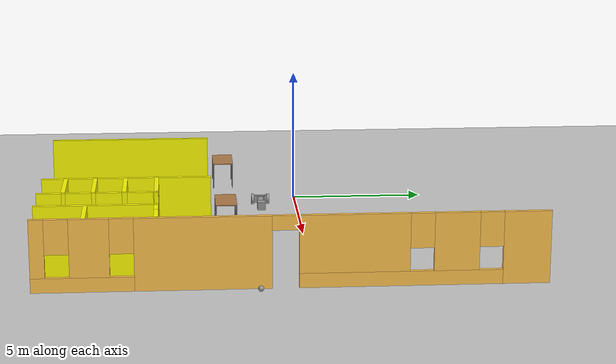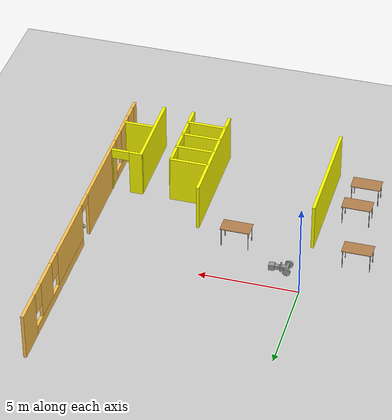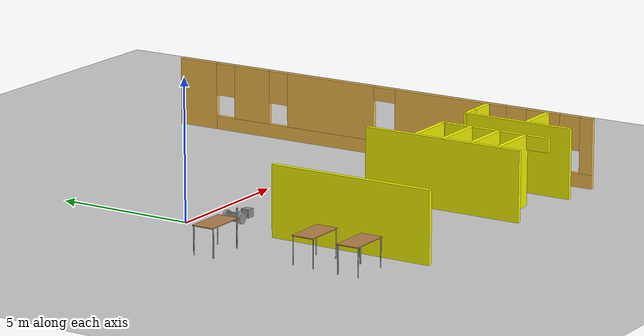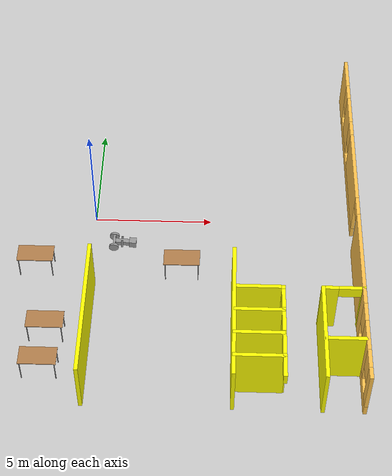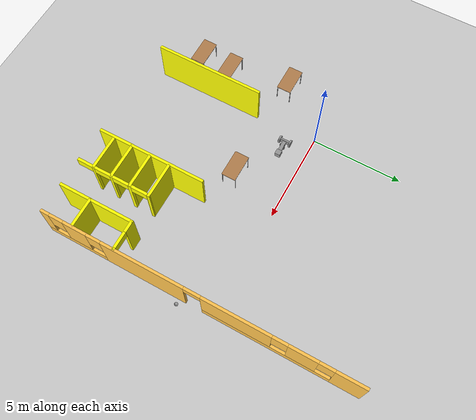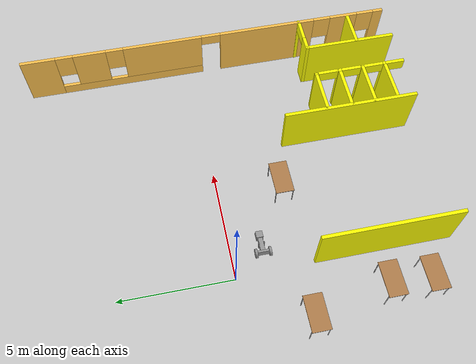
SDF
<sdf version="1.6">
 <world name="default">
  <model name="ground_plane">
   <static>1</static>
   <link name="link">
    <collision name="collision">
     <geometry><plane><normal>0 0 1</normal><size>100 100</size></plane></geometry>
     <surface><friction><ode><mu>100</mu><mu2>50</mu2></ode></friction></surface>
    </collision>
    <visual name="visual">
     <cast_shadows>0</cast_shadows>
     <geometry><plane><normal>0 0 1</normal><size>100 100</size></plane></geometry>
     <material>
      <script><uri>file://media/materials/scripts/gazebo.material</uri><name>Gazebo/Grey</name></script>
     </material>
    </visual>
   </link>
  </model>
  <model name="mybuilding">
   <pose>-2.36213 -0.825276 0 0 -0 0</pose>
   <link name="Wall_154">
    <collision name="Wall_154_Collision">
     <geometry><box><size>6 0.15 2.5</size></box></geometry>
     <pose>0 0 1.25 0 -0 0</pose>
    </collision>
    <visual name="Wall_154_Visual">
     <pose>0 0 1.25 0 -0 0</pose>
     <geometry><box><size>6 0.15 2.5</size></box></geometry>
     <material>
      <script><uri>file://media/materials/scripts/gazebo.material</uri><name>Gazebo/Grey</name></script>
      <ambient>1 1 0 1</ambient>
     </material>
     <meta><layer>0</layer></meta>
    </visual>
    <pose>2.51252 -5.57355 0 0 0 -1.5708</pose>
   </link>
   <link name="Wall_158">
    <collision name="Wall_158_Collision">
     <geometry><box><size>6 0.15 2.5</size></box></geometry>
     <pose>0 0 1.25 0 -0 0</pose>
    </collision>
    <visual name="Wall_158_Visual">
     <pose>0 0 1.25 0 -0 0</pose>
     <geometry><box><size>6 0.15 2.5</size></box></geometry>
     <material>
      <script><uri>file://media/materials/scripts/gazebo.material</uri><name>Gazebo/Grey</name></script>
      <ambient>1 1 0 1</ambient>
     </material>
     <meta><layer>0</layer></meta>
    </visual>
    <pose>8.34754 -5.57355 0 0 0 -1.5708</pose>
   </link>
   <link name="Wall_162">
    <collision name="Wall_162_Collision">
     <geometry><box><size>2 0.15 2.5</size></box></geometry>
     <pose>0 0 1.25 0 -0 0</pose>
    </collision>
    <visual name="Wall_162_Visual">
     <pose>0 0 1.25 0 -0 0</pose>
     <geometry><box><size>2 0.15 2.5</size></box></geometry>
     <material>
      <script><uri>file://media/materials/scripts/gazebo.material</uri><name>Gazebo/Grey</name></script>
      <ambient>1 1 0 1</ambient>
     </material>
     <meta><layer>0</layer></meta>
    </visual>
    <pose>9.34295 -4.49272 0 0 0 -8.3e-05</pose>
   </link>
   <link name="Wall_163">
    <pose>10.2678 -6.5178 0 0 0 -1.5708</pose>
    <visual name="Wall_163_Visual_0">
     <pose>-2.0133 0 1.25 0 -0 0</pose>
     <geometry><box><size>0.173407 0.15 2.5</size></box></geometry>
     <material>
      <script><uri>file://media/materials/scripts/gazebo.material</uri><name>Gazebo/Grey</name></script>
      <ambient>1 1 0 1</ambient>
     </material>
     <meta><layer>0</layer></meta>
    </visual>
    <collision name="Wall_163_Collision_0">
     <geometry><box><size>0.173407 0.15 2.5</size></box></geometry>
     <pose>-2.0133 0 1.25 0 -0 0</pose>
    </collision>
    <visual name="Wall_163_Visual_1">
     <pose>-0.937243 0 1.25 0 -0 0</pose>
     <geometry><box><size>0.1787 0.15 2.5</size></box></geometry>
     <material>
      <script><uri>file://media/materials/scripts/gazebo.material</uri><name>Gazebo/Grey</name></script>
      <ambient>1 1 0 1</ambient>
     </material>
     <meta><layer>0</layer></meta>
    </visual>
    <collision name="Wall_163_Collision_1">
     <geometry><box><size>0.1787 0.15 2.5</size></box></geometry>
     <pose>-0.937243 0 1.25 0 -0 0</pose>
    </collision>
    <visual name="Wall_163_Visual_2">
     <pose>0.125594 0 1.25 0 -0 0</pose>
     <geometry><box><size>0.146974 0.15 2.5</size></box></geometry>
     <material>
      <script><uri>file://media/materials/scripts/gazebo.material</uri><name>Gazebo/Grey</name></script>
      <ambient>1 1 0 1</ambient>
     </material>
     <meta><layer>0</layer></meta>
    </visual>
    <collision name="Wall_163_Collision_2">
     <geometry><box><size>0.146974 0.15 2.5</size></box></geometry>
     <pose>0.125594 0 1.25 0 -0 0</pose>
    </collision>
    <visual name="Wall_163_Visual_3">
     <pose>1.16567 0 1.25 0 -0 0</pose>
     <geometry><box><size>0.133179 0.15 2.5</size></box></geometry>
     <material>
      <script><uri>file://media/materials/scripts/gazebo.material</uri><name>Gazebo/Grey</name></script>
      <ambient>1 1 0 1</ambient>
     </material>
     <meta><layer>0</layer></meta>
    </visual>
    <collision name="Wall_163_Collision_3">
     <geometry><box><size>0.133179 0.15 2.5</size></box></geometry>
     <pose>1.16567 0 1.25 0 -0 0</pose>
    </collision>
    <visual name="Wall_163_Visual_4">
     <pose>-1.47659 0 2.25 0 -0 0</pose>
     <geometry><box><size>0.9 0.15 0.5</size></box></geometry>
     <material>
      <script><uri>file://media/materials/scripts/gazebo.material</uri><name>Gazebo/Grey</name></script>
      <ambient>1 1 0 1</ambient>
     </material>
     <meta><layer>0</layer></meta>
    </visual>
    <collision name="Wall_163_Collision_4">
     <geometry><box><size>0.9 0.15 0.5</size></box></geometry>
     <pose>-1.47659 0 2.25 0 -0 0</pose>
    </collision>
    <visual name="Wall_163_Visual_5">
     <pose>-0.397893 0 2.25 0 -0 0</pose>
     <geometry><box><size>0.9 0.15 0.5</size></box></geometry>
     <material>
      <script><uri>file://media/materials/scripts/gazebo.material</uri><name>Gazebo/Grey</name></script>
      <ambient>1 1 0 1</ambient>
     </material>
     <meta><layer>0</layer></meta>
    </visual>
    <collision name="Wall_163_Collision_5">
     <geometry><box><size>0.9 0.15 0.5</size></box></geometry>
     <pose>-0.397893 0 2.25 0 -0 0</pose>
    </collision>
    <visual name="Wall_163_Visual_6">
     <pose>0.649081 0 2.25 0 -0 0</pose>
     <geometry><box><size>0.9 0.15 0.5</size></box></geometry>
     <material>
      <script><uri>file://media/materials/scripts/gazebo.material</uri><name>Gazebo/Grey</name></script>
      <ambient>1 1 0 1</ambient>
     </material>
     <meta><layer>0</layer></meta>
    </visual>
    <collision name="Wall_163_Collision_6">
     <geometry><box><size>0.9 0.15 0.5</size></box></geometry>
     <pose>0.649081 0 2.25 0 -0 0</pose>
    </collision>
    <visual name="Wall_163_Visual_7">
     <pose>1.66613 0 2.25 0 -0 0</pose>
     <geometry><box><size>0.867739 0.15 0.5</size></box></geometry>
     <material>
      <script><uri>file://media/materials/scripts/gazebo.material</uri><name>Gazebo/Grey</name></script>
      <ambient>1 1 0 1</ambient>
     </material>
     <meta><layer>0</layer></meta>
    </visual>
    <collision name="Wall_163_Collision_7">
     <geometry><box><size>0.867739 0.15 0.5</size></box></geometry>
     <pose>1.66613 0 2.25 0 -0 0</pose>
    </collision>
   </link>
   <link name="Wall_171">
    <pose>12.6222 -4.4809 0 0 -0 3.14159</pose>
    <visual name="Wall_171_Visual_0">
     <pose>-0.79093 0 1.25 0 -0 0</pose>
     <geometry><box><size>0.168139 0.15 2.5</size></box></geometry>
     <material>
      <script><uri>file://media/materials/scripts/gazebo.material</uri><name>Gazebo/Grey</name></script>
      <ambient>1 1 0 1</ambient>
     </material>
     <meta><layer>0</layer></meta>
    </visual>
    <collision name="Wall_171_Collision_0">
     <geometry><box><size>0.168139 0.15 2.5</size></box></geometry>
     <pose>-0.79093 0 1.25 0 -0 0</pose>
    </collision>
    <visual name="Wall_171_Visual_1">
     <pose>0.53407 0 1.25 0 -0 0</pose>
     <geometry><box><size>0.681861 0.15 2.5</size></box></geometry>
     <material>
      <script><uri>file://media/materials/scripts/gazebo.material</uri><name>Gazebo/Grey</name></script>
      <ambient>1 1 0 1</ambient>
     </material>
     <meta><layer>0</layer></meta>
    </visual>
    <collision name="Wall_171_Collision_1">
     <geometry><box><size>0.681861 0.15 2.5</size></box></geometry>
     <pose>0.53407 0 1.25 0 -0 0</pose>
    </collision>
    <visual name="Wall_171_Visual_2">
     <pose>-0.256861 0 2.25 0 -0 0</pose>
     <geometry><box><size>0.9 0.15 0.5</size></box></geometry>
     <material>
      <script><uri>file://media/materials/scripts/gazebo.material</uri><name>Gazebo/Grey</name></script>
      <ambient>1 1 0 1</ambient>
     </material>
     <meta><layer>0</layer></meta>
    </visual>
    <collision name="Wall_171_Collision_2">
     <geometry><box><size>0.9 0.15 0.5</size></box></geometry>
     <pose>-0.256861 0 2.25 0 -0 0</pose>
    </collision>
   </link>
   <link name="Wall_172">
    <collision name="Wall_172_Collision">
     <geometry><box><size>4.2 0.15 2.5</size></box></geometry>
     <pose>0 0 1.25 0 -0 0</pose>
    </collision>
    <visual name="Wall_172_Visual">
     <pose>0 0 1.25 0 -0 0</pose>
     <geometry><box><size>4.2 0.15 2.5</size></box></geometry>
     <material>
      <script><uri>file://media/materials/scripts/gazebo.material</uri><name>Gazebo/Grey</name></script>
      <ambient>1 1 0 1</ambient>
     </material>
     <meta><layer>0</layer></meta>
    </visual>
    <pose>11.8222 -6.5059 0 0 0 -1.5708</pose>
   </link>
   <link name="Wall_174">
    <collision name="Wall_174_Collision">
     <geometry><box><size>1.65 0.15 2.5</size></box></geometry>
     <pose>0 0 1.25 0 -0 0</pose>
    </collision>
    <visual name="Wall_174_Visual">
     <pose>0 0 1.25 0 -0 0</pose>
     <geometry><box><size>1.65 0.15 2.5</size></box></geometry>
     <material>
      <script><uri>file://media/materials/scripts/gazebo.material</uri><name>Gazebo/Grey</name></script>
      <ambient>1 1 0 1</ambient>
     </material>
     <meta><layer>0</layer></meta>
    </visual>
    <pose>12.6046 -6.85286 0 0 -0 0</pose>
   </link>
   <link name="Wall_176">
    <collision name="Wall_176_Collision">
     <geometry><box><size>2 0.15 2.5</size></box></geometry>
     <pose>0 0 1.25 0 -0 0</pose>
    </collision>
    <visual name="Wall_176_Visual">
     <pose>0 0 1.25 0 -0 0</pose>
     <geometry><box><size>2 0.15 2.5</size></box></geometry>
     <material>
      <script><uri>file://media/materials/scripts/gazebo.material</uri><name>Gazebo/Grey</name></script>
      <ambient>1 1 0 1</ambient>
     </material>
     <meta><layer>0</layer></meta>
    </visual>
    <pose>9.29387 -6.66723 0 0 -0 0</pose>
   </link>
   <link name="Wall_179">
    <collision name="Wall_179_Collision">
     <geometry><box><size>2 0.15 2.5</size></box></geometry>
     <pose>0 0 1.25 0 -0 0</pose>
    </collision>
    <visual name="Wall_179_Visual">
     <pose>0 0 1.25 0 -0 0</pose>
     <geometry><box><size>2 0.15 2.5</size></box></geometry>
     <material>
      <script><uri>file://media/materials/scripts/gazebo.material</uri><name>Gazebo/Grey</name></script>
      <ambient>1 1 0 1</ambient>
     </material>
     <meta><layer>0</layer></meta>
    </visual>
    <pose>9.31988 -5.59469 0 0 -0 0</pose>
   </link>
   <link name="Wall_182">
    <collision name="Wall_182_Collision">
     <geometry><box><size>2 0.15 2.5</size></box></geometry>
     <pose>0 0 1.25 0 -0 0</pose>
    </collision>
    <visual name="Wall_182_Visual">
     <pose>0 0 1.25 0 -0 0</pose>
     <geometry><box><size>2 0.15 2.5</size></box></geometry>
     <material>
      <script><uri>file://media/materials/scripts/gazebo.material</uri><name>Gazebo/Grey</name></script>
      <ambient>1 1 0 1</ambient>
     </material>
     <meta><layer>0</layer></meta>
    </visual>
    <pose>9.29143 -7.70507 0 0 -0 0</pose>
   </link>
   <link name="Wall_91">
    <pose>13.425 0 0 0 0 -1.5708</pose>
    <visual name="Wall_91_Visual_0">
     <pose>-7.82957 0 1.25 0 -0 0</pose>
     <geometry><box><size>1.59086 0.15 2.5</size></box></geometry>
     <material>
      <script><uri>file://media/materials/scripts/gazebo.material</uri><name>Gazebo/Grey</name></script>
      <ambient>1 0.764706 0.305882 1</ambient>
     </material>
     <meta><layer>0</layer></meta>
    </visual>
    <collision name="Wall_91_Collision_0">
     <geometry><box><size>1.59086 0.15 2.5</size></box></geometry>
     <pose>-7.82957 0 1.25 0 -0 0</pose>
    </collision>
    <visual name="Wall_91_Visual_1">
     <pose>2.94053 0 1.25 0 -0 0</pose>
     <geometry><box><size>4.5435 0.15 2.5</size></box></geometry>
     <material>
      <script><uri>file://media/materials/scripts/gazebo.material</uri><name>Gazebo/Grey</name></script>
      <ambient>1 0.764706 0.305882 1</ambient>
     </material>
     <meta><layer>0</layer></meta>
    </visual>
    <collision name="Wall_91_Collision_1">
     <geometry><box><size>4.5435 0.15 2.5</size></box></geometry>
     <pose>2.94053 0 1.25 0 -0 0</pose>
    </collision>
    <visual name="Wall_91_Visual_2">
     <pose>-3.63268 0 0.25 0 -0 0</pose>
     <geometry><box><size>6.80292 0.15 0.5</size></box></geometry>
     <material>
      <script><uri>file://media/materials/scripts/gazebo.material</uri><name>Gazebo/Grey</name></script>
      <ambient>1 0.764706 0.305882 1</ambient>
     </material>
     <meta><layer>0</layer></meta>
    </visual>
    <collision name="Wall_91_Collision_2">
     <geometry><box><size>6.80292 0.15 0.5</size></box></geometry>
     <pose>-3.63268 0 0.25 0 -0 0</pose>
    </collision>
    <visual name="Wall_91_Visual_3">
     <pose>6.91864 0 0.25 0 -0 0</pose>
     <geometry><box><size>3.41272 0.15 0.5</size></box></geometry>
     <material>
      <script><uri>file://media/materials/scripts/gazebo.material</uri><name>Gazebo/Grey</name></script>
      <ambient>1 0.764706 0.305882 1</ambient>
     </material>
     <meta><layer>0</layer></meta>
    </visual>
    <collision name="Wall_91_Collision_3">
     <geometry><box><size>3.41272 0.15 0.5</size></box></geometry>
     <pose>6.91864 0 0.25 0 -0 0</pose>
    </collision>
    <visual name="Wall_91_Visual_4">
     <pose>-5.47612 0 1.5 0 -0 0</pose>
     <geometry><box><size>1.51603 0.15 2</size></box></geometry>
     <material>
      <script><uri>file://media/materials/scripts/gazebo.material</uri><name>Gazebo/Grey</name></script>
      <ambient>1 0.764706 0.305882 1</ambient>
     </material>
     <meta><layer>0</layer></meta>
    </visual>
    <collision name="Wall_91_Collision_4">
     <geometry><box><size>1.51603 0.15 2</size></box></geometry>
     <pose>-5.47612 0 1.5 0 -0 0</pose>
    </collision>
    <visual name="Wall_91_Visual_5">
     <pose>-2.07466 0 1.5 0 -0 0</pose>
     <geometry><box><size>3.68689 0.15 2</size></box></geometry>
     <material>
      <script><uri>file://media/materials/scripts/gazebo.material</uri><name>Gazebo/Grey</name></script>
      <ambient>1 0.764706 0.305882 1</ambient>
     </material>
     <meta><layer>0</layer></meta>
    </visual>
    <collision name="Wall_91_Collision_5">
     <geometry><box><size>3.68689 0.15 2</size></box></geometry>
     <pose>-2.07466 0 1.5 0 -0 0</pose>
    </collision>
    <visual name="Wall_91_Visual_6">
     <pose>-2.07466 0 1.5 0 -0 0</pose>
     <geometry><box><size>3.68689 0.15 2</size></box></geometry>
     <material>
      <script><uri>file://media/materials/scripts/gazebo.material</uri><name>Gazebo/Grey</name></script>
      <ambient>1 0.764706 0.305882 1</ambient>
     </material>
     <meta><layer>0</layer></meta>
    </visual>
    <collision name="Wall_91_Collision_6">
     <geometry><box><size>3.68689 0.15 2</size></box></geometry>
     <pose>-2.07466 0 1.5 0 -0 0</pose>
    </collision>
    <visual name="Wall_91_Visual_7">
     <pose>6.67512 0 1.5 0 -0 0</pose>
     <geometry><box><size>1.32567 0.15 2</size></box></geometry>
     <material>
      <script><uri>file://media/materials/scripts/gazebo.material</uri><name>Gazebo/Grey</name></script>
      <ambient>1 0.764706 0.305882 1</ambient>
     </material>
     <meta><layer>0</layer></meta>
    </visual>
    <collision name="Wall_91_Collision_7">
     <geometry><box><size>1.32567 0.15 2</size></box></geometry>
     <pose>6.67512 0 1.5 0 -0 0</pose>
    </collision>
    <visual name="Wall_91_Visual_8">
     <pose>8.38148 0 1.5 0 -0 0</pose>
     <geometry><box><size>0.487047 0.15 2</size></box></geometry>
     <material>
      <script><uri>file://media/materials/scripts/gazebo.material</uri><name>Gazebo/Grey</name></script>
      <ambient>1 0.764706 0.305882 1</ambient>
     </material>
     <meta><layer>0</layer></meta>
    </visual>
    <collision name="Wall_91_Collision_8">
     <geometry><box><size>0.487047 0.15 2</size></box></geometry>
     <pose>8.38148 0 1.5 0 -0 0</pose>
    </collision>
    <visual name="Wall_91_Visual_9">
     <pose>-6.63414 0 1.9 0 -0 0</pose>
     <geometry><box><size>0.8 0.15 1.2</size></box></geometry>
     <material>
      <script><uri>file://media/materials/scripts/gazebo.material</uri><name>Gazebo/Grey</name></script>
      <ambient>1 0.764706 0.305882 1</ambient>
     </material>
     <meta><layer>0</layer></meta>
    </visual>
    <collision name="Wall_91_Collision_9">
     <geometry><box><size>0.8 0.15 1.2</size></box></geometry>
     <pose>-6.63414 0 1.9 0 -0 0</pose>
    </collision>
    <visual name="Wall_91_Visual_10">
     <pose>5.61228 0 1.9 0 -0 0</pose>
     <geometry><box><size>0.8 0.15 1.2</size></box></geometry>
     <material>
      <script><uri>file://media/materials/scripts/gazebo.material</uri><name>Gazebo/Grey</name></script>
      <ambient>1 0.764706 0.305882 1</ambient>
     </material>
     <meta><layer>0</layer></meta>
    </visual>
    <collision name="Wall_91_Collision_10">
     <geometry><box><size>0.8 0.15 1.2</size></box></geometry>
     <pose>5.61228 0 1.9 0 -0 0</pose>
    </collision>
    <visual name="Wall_91_Visual_11">
     <pose>-4.31811 0 1.9 0 -0 0</pose>
     <geometry><box><size>0.8 0.15 1.2</size></box></geometry>
     <material>
      <script><uri>file://media/materials/scripts/gazebo.material</uri><name>Gazebo/Grey</name></script>
      <ambient>1 0.764706 0.305882 1</ambient>
     </material>
     <meta><layer>0</layer></meta>
    </visual>
    <collision name="Wall_91_Collision_11">
     <geometry><box><size>0.8 0.15 1.2</size></box></geometry>
     <pose>-4.31811 0 1.9 0 -0 0</pose>
    </collision>
    <visual name="Wall_91_Visual_12">
     <pose>7.73795 0 1.9 0 -0 0</pose>
     <geometry><box><size>0.8 0.15 1.2</size></box></geometry>
     <material>
      <script><uri>file://media/materials/scripts/gazebo.material</uri><name>Gazebo/Grey</name></script>
      <ambient>1 0.764706 0.305882 1</ambient>
     </material>
     <meta><layer>0</layer></meta>
    </visual>
    <collision name="Wall_91_Collision_12">
     <geometry><box><size>0.8 0.15 1.2</size></box></geometry>
     <pose>7.73795 0 1.9 0 -0 0</pose>
    </collision>
    <visual name="Wall_91_Visual_13">
     <pose>0.218779 0 2.25 0 -0 0</pose>
     <geometry><box><size>0.9 0.15 0.5</size></box></geometry>
     <material>
      <script><uri>file://media/materials/scripts/gazebo.material</uri><name>Gazebo/Grey</name></script>
      <ambient>1 0.764706 0.305882 1</ambient>
     </material>
     <meta><layer>0</layer></meta>
    </visual>
    <collision name="Wall_91_Collision_13">
     <geometry><box><size>0.9 0.15 0.5</size></box></geometry>
     <pose>0.218779 0 2.25 0 -0 0</pose>
    </collision>
    <visual name="Wall_91_Visual_14">
     <pose>0.218779 0 2.25 0 -0 0</pose>
     <geometry><box><size>0.9 0.15 0.5</size></box></geometry>
     <material>
      <script><uri>file://media/materials/scripts/gazebo.material</uri><name>Gazebo/Grey</name></script>
      <ambient>1 0.764706 0.305882 1</ambient>
     </material>
     <meta><layer>0</layer></meta>
    </visual>
    <collision name="Wall_91_Collision_14">
     <geometry><box><size>0.9 0.15 0.5</size></box></geometry>
     <pose>0.218779 0 2.25 0 -0 0</pose>
    </collision>
   </link>
   <static>1</static>
  </model>
  <model name="robot">
   <link name="link_0">
    <pose>1.55233 -0.934021 0.2 0 -0 0</pose>
    <inertial>
     <mass>1</mass>
     <inertia>
      <ixx>0.166667</ixx>
      <ixy>0</ixy>
      <ixz>0</ixz>
      <iyy>0.166667</iyy>
      <iyz>0</iyz>
      <izz>0.166667</izz>
     </inertia>
    </inertial>
    <visual name="visual">
     <geometry><box><size>0.3 0.5 0.1</size></box></geometry>
     <material>
      <lighting>1</lighting>
      <script><uri>file://media/materials/scripts/gazebo.material</uri><name>Gazebo/Grey</name></script>
      <shader type="pixel"><normal_map>__default__</normal_map></shader>
      <ambient>0.3 0.3 0.3 1</ambient>
      <diffuse>0.7 0.7 0.7 1</diffuse>
      <specular>0.01 0.01 0.01 1</specular>
      <emissive>0 0 0 1</emissive>
     </material>
    </visual>
    <collision name="collision">
     <geometry><box><size>0.3 0.5 0.1</size></box></geometry>
     <surface>
      <friction>
       <ode><mu>1</mu><mu2>1</mu2><fdir1>0 0 0</fdir1><slip1>0</slip1><slip2>0</slip2></ode>
       <torsional>
        <coefficient>1</coefficient>
        <patch_radius>0</patch_radius>
        <surface_radius>0</surface_radius>
        <use_patch_radius>1</use_patch_radius>
        <ode><slip>0</slip></ode>
       </torsional>
      </friction>
      <bounce><restitution_coefficient>0</restitution_coefficient><threshold>1e+06</threshold></bounce>
      <contact>
       <collide_without_contact>0</collide_without_contact>
       <collide_without_contact_bitmask>1</collide_without_contact_bitmask>
       <collide_bitmask>1</collide_bitmask>
       <ode>
        <soft_cfm>0</soft_cfm>
        <soft_erp>0.2</soft_erp>
        <kp>1e+13</kp>
        <kd>1</kd>
        <max_vel>0.01</max_vel>
        <min_depth>0</min_depth>
       </ode>
       <bullet>
        <split_impulse>1</split_impulse>
        <split_impulse_penetration_threshold>-0.01</split_impulse_penetration_threshold>
        <soft_cfm>0</soft_cfm>
        <soft_erp>0.2</soft_erp>
        <kp>1e+13</kp>
        <kd>1</kd>
       </bullet>
      </contact>
     </surface>
    </collision>
   </link>
   <link name="link_1">
    <pose>1.55233 -1.23404 0.2 1.5707 -0 0</pose>
    <inertial>
     <mass>1</mass>
     <inertia><ixx>0.145833</ixx><ixy>0</ixy><ixz>0</ixz><iyy>0.145833</iyy><iyz>0</iyz><izz>0.125</izz></inertia>
    </inertial>
    <visual name="visual">
     <geometry><cylinder><radius>0.2</radius><length>0.1</length></cylinder></geometry>
     <material>
      <lighting>1</lighting>
      <script><uri>file://media/materials/scripts/gazebo.material</uri><name>Gazebo/Grey</name></script>
      <shader type="pixel"><normal_map>__default__</normal_map></shader>
      <ambient>0.3 0.3 0.3 1</ambient>
      <diffuse>0.7 0.7 0.7 1</diffuse>
      <specular>0.01 0.01 0.01 1</specular>
      <emissive>0 0 0 1</emissive>
     </material>
    </visual>
    <collision name="collision">
     <geometry><cylinder><radius>0.2</radius><length>0.1</length></cylinder></geometry>
     <surface>
      <friction>
       <ode><mu>1</mu><mu2>1</mu2><fdir1>0 0 0</fdir1><slip1>0</slip1><slip2>0</slip2></ode>
       <torsional>
        <coefficient>1</coefficient>
        <patch_radius>0</patch_radius>
        <surface_radius>0</surface_radius>
        <use_patch_radius>1</use_patch_radius>
        <ode><slip>0</slip></ode>
       </torsional>
      </friction>
      <bounce><restitution_coefficient>0</restitution_coefficient><threshold>1e+06</threshold></bounce>
      <contact>
       <collide_without_contact>0</collide_without_contact>
       <collide_without_contact_bitmask>1</collide_without_contact_bitmask>
       <collide_bitmask>1</collide_bitmask>
       <ode>
        <soft_cfm>0</soft_cfm>
        <soft_erp>0.2</soft_erp>
        <kp>1e+13</kp>
        <kd>1</kd>
        <max_vel>0.01</max_vel>
        <min_depth>0</min_depth>
       </ode>
       <bullet>
        <split_impulse>1</split_impulse>
        <split_impulse_penetration_threshold>-0.01</split_impulse_penetration_threshold>
        <soft_cfm>0</soft_cfm>
        <soft_erp>0.2</soft_erp>
        <kp>1e+13</kp>
        <kd>1</kd>
       </bullet>
      </contact>
     </surface>
    </collision>
   </link>
   <link name="link_1_clone">
    <pose>1.55233 -0.634002 0.2 1.5707 -0 0</pose>
    <inertial>
     <mass>1</mass>
     <inertia><ixx>0.145833</ixx><ixy>0</ixy><ixz>0</ixz><iyy>0.145833</iyy><iyz>0</iyz><izz>0.125</izz></inertia>
    </inertial>
    <visual name="visual">
     <geometry><cylinder><radius>0.2</radius><length>0.1</length></cylinder></geometry>
     <material>
      <lighting>1</lighting>
      <script><uri>file://media/materials/scripts/gazebo.material</uri><name>Gazebo/Grey</name></script>
      <shader type="pixel"><normal_map>__default__</normal_map></shader>
      <ambient>0.3 0.3 0.3 1</ambient>
      <diffuse>0.7 0.7 0.7 1</diffuse>
      <specular>0.01 0.01 0.01 1</specular>
      <emissive>0 0 0 1</emissive>
     </material>
    </visual>
    <collision name="collision">
     <geometry><cylinder><radius>0.2</radius><length>0.1</length></cylinder></geometry>
     <surface>
      <friction>
       <ode><mu>1</mu><mu2>1</mu2><fdir1>0 0 0</fdir1><slip1>0</slip1><slip2>0</slip2></ode>
       <torsional>
        <coefficient>1</coefficient>
        <patch_radius>0</patch_radius>
        <surface_radius>0</surface_radius>
        <use_patch_radius>1</use_patch_radius>
        <ode><slip>0</slip></ode>
       </torsional>
      </friction>
      <bounce><restitution_coefficient>0</restitution_coefficient><threshold>1e+06</threshold></bounce>
      <contact>
       <collide_without_contact>0</collide_without_contact>
       <collide_without_contact_bitmask>1</collide_without_contact_bitmask>
       <collide_bitmask>1</collide_bitmask>
       <ode>
        <soft_cfm>0</soft_cfm>
        <soft_erp>0.2</soft_erp>
        <kp>1e+13</kp>
        <kd>1</kd>
        <max_vel>0.01</max_vel>
        <min_depth>0</min_depth>
       </ode>
       <bullet>
        <split_impulse>1</split_impulse>
        <split_impulse_penetration_threshold>-0.01</split_impulse_penetration_threshold>
        <soft_cfm>0</soft_cfm>
        <soft_erp>0.2</soft_erp>
        <kp>1e+13</kp>
        <kd>1</kd>
       </bullet>
      </contact>
     </surface>
    </collision>
   </link>
   <link name="link_2">
    <pose>1.55233 -0.934021 0.54 0 -0 0</pose>
    <inertial>
     <mass>1</mass>
     <inertia>
      <ixx>0.166667</ixx>
      <ixy>0</ixy>
      <ixz>0</ixz>
      <iyy>0.166667</iyy>
      <iyz>0</iyz>
      <izz>0.166667</izz>
     </inertia>
    </inertial>
    <visual name="visual">
     <geometry><box><size>0.2 0.2 0.6</size></box></geometry>
     <material>
      <lighting>1</lighting>
      <script><uri>file://media/materials/scripts/gazebo.material</uri><name>Gazebo/Grey</name></script>
      <shader type="pixel"><normal_map>__default__</normal_map></shader>
      <ambient>0.3 0.3 0.3 1</ambient>
      <diffuse>0.7 0.7 0.7 1</diffuse>
      <specular>0.01 0.01 0.01 1</specular>
      <emissive>0 0 0 1</emissive>
     </material>
    </visual>
    <collision name="collision">
     <geometry><box><size>0.2 0.2 0.6</size></box></geometry>
     <surface>
      <friction>
       <ode><mu>1</mu><mu2>1</mu2><fdir1>0 0 0</fdir1><slip1>0</slip1><slip2>0</slip2></ode>
       <torsional>
        <coefficient>1</coefficient>
        <patch_radius>0</patch_radius>
        <surface_radius>0</surface_radius>
        <use_patch_radius>1</use_patch_radius>
        <ode><slip>0</slip></ode>
       </torsional>
      </friction>
      <bounce><restitution_coefficient>0</restitution_coefficient><threshold>1e+06</threshold></bounce>
      <contact>
       <collide_without_contact>0</collide_without_contact>
       <collide_without_contact_bitmask>1</collide_without_contact_bitmask>
       <collide_bitmask>1</collide_bitmask>
       <ode>
        <soft_cfm>0</soft_cfm>
        <soft_erp>0.2</soft_erp>
        <kp>1e+13</kp>
        <kd>1</kd>
        <max_vel>0.01</max_vel>
        <min_depth>0</min_depth>
       </ode>
       <bullet>
        <split_impulse>1</split_impulse>
        <split_impulse_penetration_threshold>-0.01</split_impulse_penetration_threshold>
        <soft_cfm>0</soft_cfm>
        <soft_erp>0.2</soft_erp>
        <kp>1e+13</kp>
        <kd>1</kd>
       </bullet>
      </contact>
     </surface>
    </collision>
   </link>
   <link name="link_3">
    <pose>1.55233 -0.934021 0.99 0 -0 0</pose>
    <inertial>
     <mass>1</mass>
     <inertia>
      <ixx>0.166667</ixx>
      <ixy>0</ixy>
      <ixz>0</ixz>
      <iyy>0.166667</iyy>
      <iyz>0</iyz>
      <izz>0.166667</izz>
     </inertia>
    </inertial>
    <visual name="visual">
     <geometry><box><size>0.3 0.3 0.3</size></box></geometry>
     <material>
      <lighting>1</lighting>
      <script><uri>file://media/materials/scripts/gazebo.material</uri><name>Gazebo/Grey</name></script>
      <shader type="pixel"><normal_map>__default__</normal_map></shader>
      <ambient>0.3 0.3 0.3 1</ambient>
      <diffuse>0.7 0.7 0.7 1</diffuse>
      <specular>0.01 0.01 0.01 1</specular>
      <emissive>0 0 0 1</emissive>
     </material>
    </visual>
    <collision name="collision">
     <geometry><box><size>0.3 0.3 0.3</size></box></geometry>
     <surface>
      <friction>
       <ode><mu>1</mu><mu2>1</mu2><fdir1>0 0 0</fdir1><slip1>0</slip1><slip2>0</slip2></ode>
       <torsional>
        <coefficient>1</coefficient>
        <patch_radius>0</patch_radius>
        <surface_radius>0</surface_radius>
        <use_patch_radius>1</use_patch_radius>
        <ode><slip>0</slip></ode>
       </torsional>
      </friction>
      <bounce><restitution_coefficient>0</restitution_coefficient><threshold>1e+06</threshold></bounce>
      <contact>
       <collide_without_contact>0</collide_without_contact>
       <collide_without_contact_bitmask>1</collide_without_contact_bitmask>
       <collide_bitmask>1</collide_bitmask>
       <ode>
        <soft_cfm>0</soft_cfm>
        <soft_erp>0.2</soft_erp>
        <kp>1e+13</kp>
        <kd>1</kd>
        <max_vel>0.01</max_vel>
        <min_depth>0</min_depth>
       </ode>
       <bullet>
        <split_impulse>1</split_impulse>
        <split_impulse_penetration_threshold>-0.01</split_impulse_penetration_threshold>
        <soft_cfm>0</soft_cfm>
        <soft_erp>0.2</soft_erp>
        <kp>1e+13</kp>
        <kd>1</kd>
       </bullet>
      </contact>
     </surface>
    </collision>
   </link>
   <link name="link_4_clone">
    <pose>1.57233 -0.819719 0.54 0 -0 0</pose>
    <inertial>
     <mass>1</mass>
     <inertia>
      <ixx>0.166667</ixx>
      <ixy>0</ixy>
      <ixz>0</ixz>
      <iyy>0.166667</iyy>
      <iyz>0</iyz>
      <izz>0.166667</izz>
     </inertia>
    </inertial>
    <visual name="visual">
     <geometry><box><size>0.5 0.03 0.08</size></box></geometry>
     <material>
      <lighting>1</lighting>
      <script><uri>file://media/materials/scripts/gazebo.material</uri><name>Gazebo/Grey</name></script>
      <shader type="pixel"><normal_map>__default__</normal_map></shader>
      <ambient>0.3 0.3 0.3 1</ambient>
      <diffuse>0.7 0.7 0.7 1</diffuse>
      <specular>0.01 0.01 0.01 1</specular>
      <emissive>0 0 0 1</emissive>
     </material>
    </visual>
    <collision name="collision">
     <geometry><box><size>0.5 0.03 0.08</size></box></geometry>
     <surface>
      <friction>
       <ode><mu>1</mu><mu2>1</mu2><fdir1>0 0 0</fdir1><slip1>0</slip1><slip2>0</slip2></ode>
       <torsional>
        <coefficient>1</coefficient>
        <patch_radius>0</patch_radius>
        <surface_radius>0</surface_radius>
        <use_patch_radius>1</use_patch_radius>
        <ode><slip>0</slip></ode>
       </torsional>
      </friction>
      <bounce><restitution_coefficient>0</restitution_coefficient><threshold>1e+06</threshold></bounce>
      <contact>
       <collide_without_contact>0</collide_without_contact>
       <collide_without_contact_bitmask>1</collide_without_contact_bitmask>
       <collide_bitmask>1</collide_bitmask>
       <ode>
        <soft_cfm>0</soft_cfm>
        <soft_erp>0.2</soft_erp>
        <kp>1e+13</kp>
        <kd>1</kd>
        <max_vel>0.01</max_vel>
        <min_depth>0</min_depth>
       </ode>
       <bullet>
        <split_impulse>1</split_impulse>
        <split_impulse_penetration_threshold>-0.01</split_impulse_penetration_threshold>
        <soft_cfm>0</soft_cfm>
        <soft_erp>0.2</soft_erp>
        <kp>1e+13</kp>
        <kd>1</kd>
       </bullet>
      </contact>
     </surface>
    </collision>
   </link>
   <link name="link_4_clone_clone">
    <pose>1.57233 -1.04902 0.54 0 -0 0</pose>
    <inertial>
     <mass>1</mass>
     <inertia>
      <ixx>0.166667</ixx>
      <ixy>0</ixy>
      <ixz>0</ixz>
      <iyy>0.166667</iyy>
      <iyz>0</iyz>
      <izz>0.166667</izz>
     </inertia>
    </inertial>
    <visual name="visual">
     <geometry><box><size>0.5 0.03 0.08</size></box></geometry>
     <material>
      <lighting>1</lighting>
      <script><uri>file://media/materials/scripts/gazebo.material</uri><name>Gazebo/Grey</name></script>
      <shader type="pixel"><normal_map>__default__</normal_map></shader>
      <ambient>0.3 0.3 0.3 1</ambient>
      <diffuse>0.7 0.7 0.7 1</diffuse>
      <specular>0.01 0.01 0.01 1</specular>
      <emissive>0 0 0 1</emissive>
     </material>
    </visual>
    <collision name="collision">
     <geometry><box><size>0.5 0.03 0.08</size></box></geometry>
     <surface>
      <friction>
       <ode><mu>1</mu><mu2>1</mu2><fdir1>0 0 0</fdir1><slip1>0</slip1><slip2>0</slip2></ode>
       <torsional>
        <coefficient>1</coefficient>
        <patch_radius>0</patch_radius>
        <surface_radius>0</surface_radius>
        <use_patch_radius>1</use_patch_radius>
        <ode><slip>0</slip></ode>
       </torsional>
      </friction>
      <bounce><restitution_coefficient>0</restitution_coefficient><threshold>1e+06</threshold></bounce>
      <contact>
       <collide_without_contact>0</collide_without_contact>
       <collide_without_contact_bitmask>1</collide_without_contact_bitmask>
       <collide_bitmask>1</collide_bitmask>
       <ode>
        <soft_cfm>0</soft_cfm>
        <soft_erp>0.2</soft_erp>
        <kp>1e+13</kp>
        <kd>1</kd>
        <max_vel>0.01</max_vel>
        <min_depth>0</min_depth>
       </ode>
       <bullet>
        <split_impulse>1</split_impulse>
        <split_impulse_penetration_threshold>-0.01</split_impulse_penetration_threshold>
        <soft_cfm>0</soft_cfm>
        <soft_erp>0.2</soft_erp>
        <kp>1e+13</kp>
        <kd>1</kd>
       </bullet>
      </contact>
     </surface>
    </collision>
   </link>
   <joint name="link_0_JOINT_1" type="revolute">
    <parent>link_0</parent>
    <child>link_1</child>
    <axis>
     <xyz>1 0 0</xyz>
     <use_parent_model_frame>0</use_parent_model_frame>
     <limit>
      <lower>-1.79769e+308</lower>
      <upper>1.79769e+308</upper>
      <effort>-1</effort>
      <velocity>-1</velocity>
     </limit>
     <dynamics>
      <spring_reference>0</spring_reference>
      <spring_stiffness>0</spring_stiffness>
      <damping>0</damping>
     </dynamics>
    </axis>
    <physics>
     <ode><limit><cfm>0</cfm><erp>0.2</erp></limit><suspension><cfm>0</cfm><erp>0.2</erp></suspension></ode>
    </physics>
   </joint>
   <joint name="link_0_JOINT_2" type="revolute">
    <parent>link_0</parent>
    <child>link_1_clone</child>
    <axis>
     <xyz>1 0 0</xyz>
     <use_parent_model_frame>0</use_parent_model_frame>
     <limit>
      <lower>-1.79769e+308</lower>
      <upper>1.79769e+308</upper>
      <effort>-1</effort>
      <velocity>-1</velocity>
     </limit>
     <dynamics>
      <spring_reference>0</spring_reference>
      <spring_stiffness>0</spring_stiffness>
      <damping>0</damping>
     </dynamics>
    </axis>
    <physics>
     <ode><limit><cfm>0</cfm><erp>0.2</erp></limit><suspension><cfm>0</cfm><erp>0.2</erp></suspension></ode>
    </physics>
   </joint>
   <joint name="link_0_JOINT_6" type="fixed">
    <parent>link_0</parent>
    <child>link_2</child>
    <physics>
     <ode><limit><cfm>0</cfm><erp>0.2</erp></limit><suspension><cfm>0</cfm><erp>0.2</erp></suspension></ode>
    </physics>
   </joint>
   <joint name="link_2_JOINT_12" type="revolute">
    <parent>link_2</parent>
    <child>link_4_clone</child>
    <axis>
     <xyz>0 0 1</xyz>
     <use_parent_model_frame>0</use_parent_model_frame>
     <limit>
      <lower>-1.79769e+308</lower>
      <upper>1.79769e+308</upper>
      <effort>-1</effort>
      <velocity>-1</velocity>
     </limit>
     <dynamics>
      <spring_reference>0</spring_reference>
      <spring_stiffness>0</spring_stiffness>
      <damping>0</damping>
     </dynamics>
    </axis>
    <physics>
     <ode><limit><cfm>0</cfm><erp>0.2</erp></limit><suspension><cfm>0</cfm><erp>0.2</erp></suspension></ode>
    </physics>
   </joint>
   <joint name="link_2_JOINT_7" type="fixed">
    <parent>link_2</parent>
    <child>link_3</child>
    <physics>
     <ode><limit><cfm>0</cfm><erp>0.2</erp></limit><suspension><cfm>0</cfm><erp>0.2</erp></suspension></ode>
    </physics>
   </joint>
   <joint name="link_2_JOINT_8" type="revolute">
    <parent>link_2</parent>
    <child>link_4_clone_clone</child>
    <axis>
     <xyz>0 0 1</xyz>
     <use_parent_model_frame>0</use_parent_model_frame>
     <limit>
      <lower>-1.79769e+308</lower>
      <upper>1.79769e+308</upper>
      <effort>-1</effort>
      <velocity>-1</velocity>
     </limit>
     <dynamics>
      <spring_reference>0</spring_reference>
      <spring_stiffness>0</spring_stiffness>
      <damping>0</damping>
      <friction>0</friction>
     </dynamics>
    </axis>
    <physics>
     <ode><limit><cfm>0</cfm><erp>0.2</erp></limit><suspension><cfm>0</cfm><erp>0.2</erp></suspension></ode>
    </physics>
   </joint>
   <static>0</static>
   <pose>0.763615 -0.429386 1.76083 3.14126 1.51734 -3.1383</pose>
  </model>
  <model name="table_7">
   <static>1</static>
   <link name="link">
    <collision name="surface">
     <pose>0 0 1 0 -0 0</pose>
     <geometry><box><size>1.5 0.8 0.03</size></box></geometry>
     <surface><friction><ode><mu>0.6</mu><mu2>0.6</mu2></ode></friction></surface>
    </collision>
    <visual name="visual1">
     <pose>0 0 1 0 -0 0</pose>
     <geometry><box><size>1.5 0.8 0.03</size></box></geometry>
     <material>
      <script><uri>file://media/materials/scripts/gazebo.material</uri><name>Gazebo/Wood</name></script>
     </material>
    </visual>
    <collision name="front_left_leg">
     <pose>0.68 0.38 0.5 0 -0 0</pose>
     <geometry><cylinder><radius>0.02</radius><length>1</length></cylinder></geometry>
    </collision>
    <visual name="front_left_leg">
     <pose>0.68 0.38 0.5 0 -0 0</pose>
     <geometry><cylinder><radius>0.02</radius><length>1</length></cylinder></geometry>
     <material>
      <script><uri>file://media/materials/scripts/gazebo.material</uri><name>Gazebo/Grey</name></script>
     </material>
    </visual>
    <collision name="front_right_leg">
     <pose>0.68 -0.38 0.5 0 -0 0</pose>
     <geometry><cylinder><radius>0.02</radius><length>1</length></cylinder></geometry>
    </collision>
    <visual name="front_right_leg">
     <pose>0.68 -0.38 0.5 0 -0 0</pose>
     <geometry><cylinder><radius>0.02</radius><length>1</length></cylinder></geometry>
     <material>
      <script><uri>file://media/materials/scripts/gazebo.material</uri><name>Gazebo/Grey</name></script>
     </material>
    </visual>
    <collision name="back_right_leg">
     <pose>-0.68 -0.38 0.5 0 -0 0</pose>
     <geometry><cylinder><radius>0.02</radius><length>1</length></cylinder></geometry>
    </collision>
    <visual name="back_right_leg">
     <pose>-0.68 -0.38 0.5 0 -0 0</pose>
     <geometry><cylinder><radius>0.02</radius><length>1</length></cylinder></geometry>
     <material>
      <script><uri>file://media/materials/scripts/gazebo.material</uri><name>Gazebo/Grey</name></script>
     </material>
    </visual>
    <collision name="back_left_leg">
     <pose>-0.68 0.38 0.5 0 -0 0</pose>
     <geometry><cylinder><radius>0.02</radius><length>1</length></cylinder></geometry>
    </collision>
    <visual name="back_left_leg">
     <pose>-0.68 0.38 0.5 0 -0 0</pose>
     <geometry><cylinder><radius>0.02</radius><length>1</length></cylinder></geometry>
     <material>
      <script><uri>file://media/materials/scripts/gazebo.material</uri><name>Gazebo/Grey</name></script>
     </material>
    </visual>
   </link>
   <pose>-1.591 -7.82186 0 0 -0 0</pose>
  </model>
  <model name="table_8">
   <static>1</static>
   <link name="link">
    <collision name="surface">
     <pose>0 0 1 0 -0 0</pose>
     <geometry><box><size>1.5 0.8 0.03</size></box></geometry>
     <surface><friction><ode><mu>0.6</mu><mu2>0.6</mu2></ode></friction></surface>
    </collision>
    <visual name="visual1">
     <pose>0 0 1 0 -0 0</pose>
     <geometry><box><size>1.5 0.8 0.03</size></box></geometry>
     <material>
      <script><uri>file://media/materials/scripts/gazebo.material</uri><name>Gazebo/Wood</name></script>
     </material>
    </visual>
    <collision name="front_left_leg">
     <pose>0.68 0.38 0.5 0 -0 0</pose>
     <geometry><cylinder><radius>0.02</radius><length>1</length></cylinder></geometry>
    </collision>
    <visual name="front_left_leg">
     <pose>0.68 0.38 0.5 0 -0 0</pose>
     <geometry><cylinder><radius>0.02</radius><length>1</length></cylinder></geometry>
     <material>
      <script><uri>file://media/materials/scripts/gazebo.material</uri><name>Gazebo/Grey</name></script>
     </material>
    </visual>
    <collision name="front_right_leg">
     <pose>0.68 -0.38 0.5 0 -0 0</pose>
     <geometry><cylinder><radius>0.02</radius><length>1</length></cylinder></geometry>
    </collision>
    <visual name="front_right_leg">
     <pose>0.68 -0.38 0.5 0 -0 0</pose>
     <geometry><cylinder><radius>0.02</radius><length>1</length></cylinder></geometry>
     <material>
      <script><uri>file://media/materials/scripts/gazebo.material</uri><name>Gazebo/Grey</name></script>
     </material>
    </visual>
    <collision name="back_right_leg">
     <pose>-0.68 -0.38 0.5 0 -0 0</pose>
     <geometry><cylinder><radius>0.02</radius><length>1</length></cylinder></geometry>
    </collision>
    <visual name="back_right_leg">
     <pose>-0.68 -0.38 0.5 0 -0 0</pose>
     <geometry><cylinder><radius>0.02</radius><length>1</length></cylinder></geometry>
     <material>
      <script><uri>file://media/materials/scripts/gazebo.material</uri><name>Gazebo/Grey</name></script>
     </material>
    </visual>
    <collision name="back_left_leg">
     <pose>-0.68 0.38 0.5 0 -0 0</pose>
     <geometry><cylinder><radius>0.02</radius><length>1</length></cylinder></geometry>
    </collision>
    <visual name="back_left_leg">
     <pose>-0.68 0.38 0.5 0 -0 0</pose>
     <geometry><cylinder><radius>0.02</radius><length>1</length></cylinder></geometry>
     <material>
      <script><uri>file://media/materials/scripts/gazebo.material</uri><name>Gazebo/Grey</name></script>
     </material>
    </visual>
   </link>
   <pose>-1.5061 -6.08189 0 0 -0 0</pose>
  </model>
  <model name="table_11">
   <static>1</static>
   <link name="link">
    <collision name="surface">
     <pose>0 0 1 0 -0 0</pose>
     <geometry><box><size>1.5 0.8 0.03</size></box></geometry>
     <surface><friction><ode><mu>0.6</mu><mu2>0.6</mu2></ode></friction></surface>
    </collision>
    <visual name="visual1">
     <pose>0 0 1 0 -0 0</pose>
     <geometry><box><size>1.5 0.8 0.03</size></box></geometry>
     <material>
      <script><uri>file://media/materials/scripts/gazebo.material</uri><name>Gazebo/Wood</name></script>
     </material>
    </visual>
    <collision name="front_left_leg">
     <pose>0.68 0.38 0.5 0 -0 0</pose>
     <geometry><cylinder><radius>0.02</radius><length>1</length></cylinder></geometry>
    </collision>
    <visual name="front_left_leg">
     <pose>0.68 0.38 0.5 0 -0 0</pose>
     <geometry><cylinder><radius>0.02</radius><length>1</length></cylinder></geometry>
     <material>
      <script><uri>file://media/materials/scripts/gazebo.material</uri><name>Gazebo/Grey</name></script>
     </material>
    </visual>
    <collision name="front_right_leg">
     <pose>0.68 -0.38 0.5 0 -0 0</pose>
     <geometry><cylinder><radius>0.02</radius><length>1</length></cylinder></geometry>
    </collision>
    <visual name="front_right_leg">
     <pose>0.68 -0.38 0.5 0 -0 0</pose>
     <geometry><cylinder><radius>0.02</radius><length>1</length></cylinder></geometry>
     <material>
      <script><uri>file://media/materials/scripts/gazebo.material</uri><name>Gazebo/Grey</name></script>
     </material>
    </visual>
    <collision name="back_right_leg">
     <pose>-0.68 -0.38 0.5 0 -0 0</pose>
     <geometry><cylinder><radius>0.02</radius><length>1</length></cylinder></geometry>
    </collision>
    <visual name="back_right_leg">
     <pose>-0.68 -0.38 0.5 0 -0 0</pose>
     <geometry><cylinder><radius>0.02</radius><length>1</length></cylinder></geometry>
     <material>
      <script><uri>file://media/materials/scripts/gazebo.material</uri><name>Gazebo/Grey</name></script>
     </material>
    </visual>
    <collision name="back_left_leg">
     <pose>-0.68 0.38 0.5 0 -0 0</pose>
     <geometry><cylinder><radius>0.02</radius><length>1</length></cylinder></geometry>
    </collision>
    <visual name="back_left_leg">
     <pose>-0.68 0.38 0.5 0 -0 0</pose>
     <geometry><cylinder><radius>0.02</radius><length>1</length></cylinder></geometry>
     <material>
      <script><uri>file://media/materials/scripts/gazebo.material</uri><name>Gazebo/Grey</name></script>
     </material>
    </visual>
   </link>
   <pose>3.83103 -2.79962 0 0 -0 0</pose>
  </model>
  <model name="table_12">
   <static>1</static>
   <link name="link">
    <collision name="surface">
     <pose>0 0 1 0 -0 0</pose>
     <geometry><box><size>1.5 0.8 0.03</size></box></geometry>
     <surface><friction><ode><mu>0.6</mu><mu2>0.6</mu2></ode></friction></surface>
    </collision>
    <visual name="visual1">
     <pose>0 0 1 0 -0 0</pose>
     <geometry><box><size>1.5 0.8 0.03</size></box></geometry>
     <material>
      <script><uri>file://media/materials/scripts/gazebo.material</uri><name>Gazebo/Wood</name></script>
     </material>
    </visual>
    <collision name="front_left_leg">
     <pose>0.68 0.38 0.5 0 -0 0</pose>
     <geometry><cylinder><radius>0.02</radius><length>1</length></cylinder></geometry>
    </collision>
    <visual name="front_left_leg">
     <pose>0.68 0.38 0.5 0 -0 0</pose>
     <geometry><cylinder><radius>0.02</radius><length>1</length></cylinder></geometry>
     <material>
      <script><uri>file://media/materials/scripts/gazebo.material</uri><name>Gazebo/Grey</name></script>
     </material>
    </visual>
    <collision name="front_right_leg">
     <pose>0.68 -0.38 0.5 0 -0 0</pose>
     <geometry><cylinder><radius>0.02</radius><length>1</length></cylinder></geometry>
    </collision>
    <visual name="front_right_leg">
     <pose>0.68 -0.38 0.5 0 -0 0</pose>
     <geometry><cylinder><radius>0.02</radius><length>1</length></cylinder></geometry>
     <material>
      <script><uri>file://media/materials/scripts/gazebo.material</uri><name>Gazebo/Grey</name></script>
     </material>
    </visual>
    <collision name="back_right_leg">
     <pose>-0.68 -0.38 0.5 0 -0 0</pose>
     <geometry><cylinder><radius>0.02</radius><length>1</length></cylinder></geometry>
    </collision>
    <visual name="back_right_leg">
     <pose>-0.68 -0.38 0.5 0 -0 0</pose>
     <geometry><cylinder><radius>0.02</radius><length>1</length></cylinder></geometry>
     <material>
      <script><uri>file://media/materials/scripts/gazebo.material</uri><name>Gazebo/Grey</name></script>
     </material>
    </visual>
    <collision name="back_left_leg">
     <pose>-0.68 0.38 0.5 0 -0 0</pose>
     <geometry><cylinder><radius>0.02</radius><length>1</length></cylinder></geometry>
    </collision>
    <visual name="back_left_leg">
     <pose>-0.68 0.38 0.5 0 -0 0</pose>
     <geometry><cylinder><radius>0.02</radius><length>1</length></cylinder></geometry>
     <material>
      <script><uri>file://media/materials/scripts/gazebo.material</uri><name>Gazebo/Grey</name></script>
     </material>
    </visual>
   </link>
   <pose>-2.2569 -2.74479 0 0 -0 0</pose>
  </model>
  <model name="my_ball">
   <link name="link_0">
    <inertial>
     <mass>1</mass>
     <inertia><ixx>0.1</ixx><ixy>0</ixy><ixz>0</ixz><iyy>0.1</iyy><iyz>0</iyz><izz>0.1</izz></inertia>
    </inertial>
    <visual name="visual">
     <geometry><sphere><radius>0.1</radius></sphere></geometry>
     <material>
      <lighting>1</lighting>
      <script><uri>file://media/materials/scripts/gazebo.material</uri><name>Gazebo/Grey</name></script>
      <shader type="pixel"><normal_map>__default__</normal_map></shader>
      <ambient>1 1 1 1</ambient>
      <diffuse>1 1 1 1</diffuse>
      <specular>1 1 1 1</specular>
      <emissive>1 1 1 1</emissive>
     </material>
    </visual>
    <collision name="collision">
     <geometry><sphere><radius>0.1</radius></sphere></geometry>
     <surface>
      <friction>
       <ode><mu>1</mu><mu2>1</mu2><fdir1>0 0 0</fdir1><slip1>0</slip1><slip2>0</slip2></ode>
       <torsional>
        <coefficient>1</coefficient>
        <patch_radius>0</patch_radius>
        <surface_radius>0</surface_radius>
        <use_patch_radius>1</use_patch_radius>
        <ode><slip>0</slip></ode>
       </torsional>
      </friction>
      <bounce><restitution_coefficient>0</restitution_coefficient><threshold>1e+06</threshold></bounce>
      <contact>
       <collide_without_contact>0</collide_without_contact>
       <collide_without_contact_bitmask>1</collide_without_contact_bitmask>
       <collide_bitmask>1</collide_bitmask>
       <ode>
        <soft_cfm>0</soft_cfm>
        <soft_erp>0.2</soft_erp>
        <kp>1e+13</kp>
        <kd>1</kd>
        <max_vel>0.01</max_vel>
        <min_depth>0</min_depth>
       </ode>
       <bullet>
        <split_impulse>1</split_impulse>
        <split_impulse_penetration_threshold>-0.01</split_impulse_penetration_threshold>
        <soft_cfm>0</soft_cfm>
        <soft_erp>0.2</soft_erp>
        <kp>1e+13</kp>
        <kd>1</kd>
       </bullet>
      </contact>
     </surface>
    </collision>
   </link>
   <static>0</static>
   <pose>11.4264 -1.87829 0.1 0 -0 0</pose>
  </model>
 </world>
</sdf>
